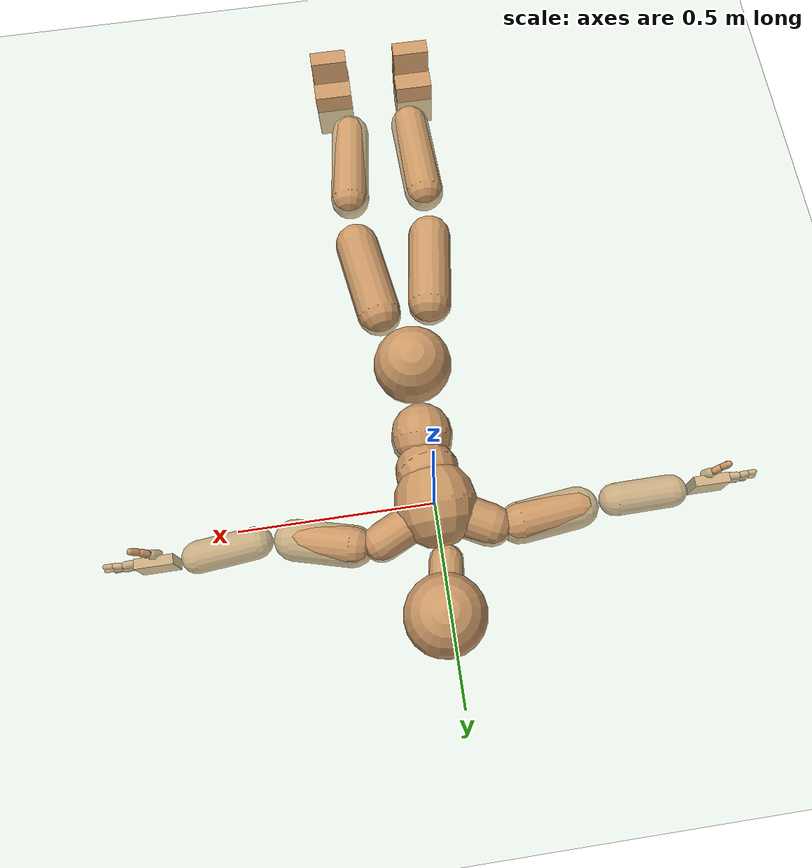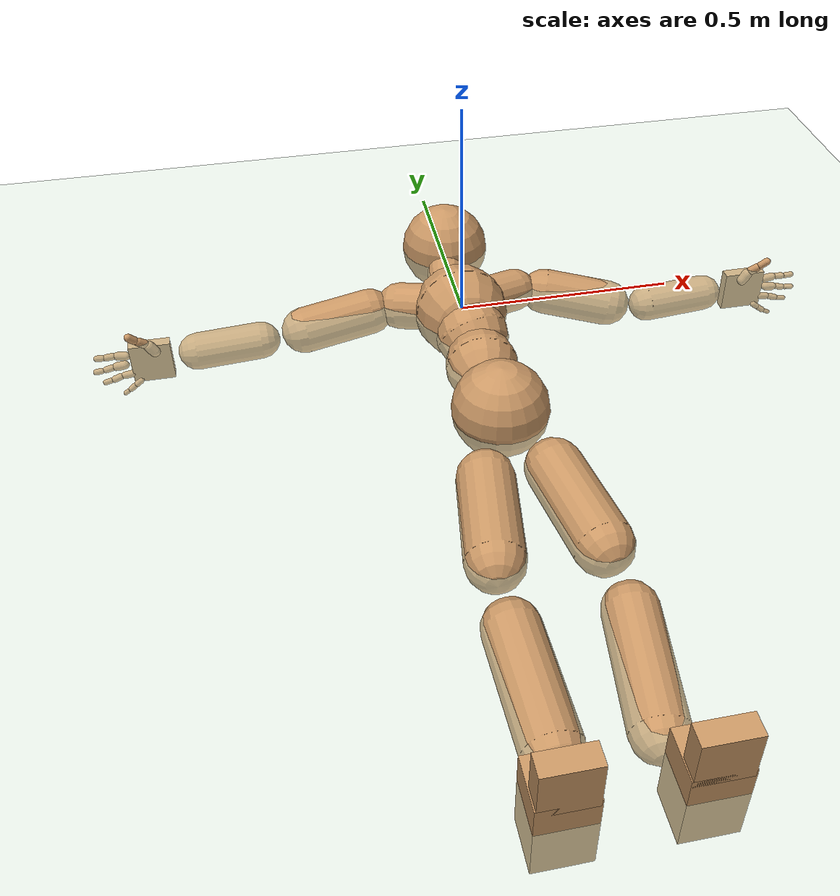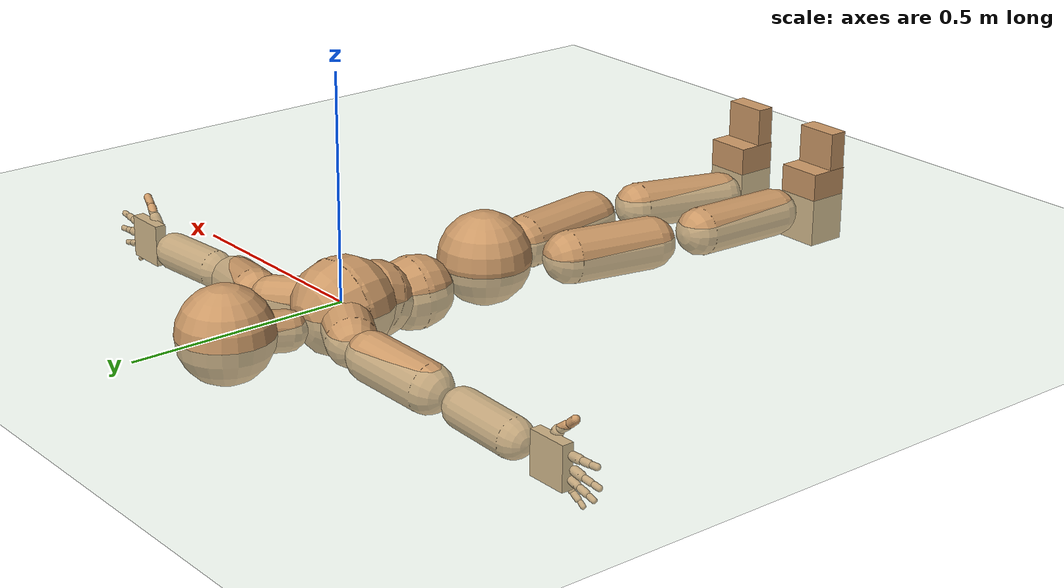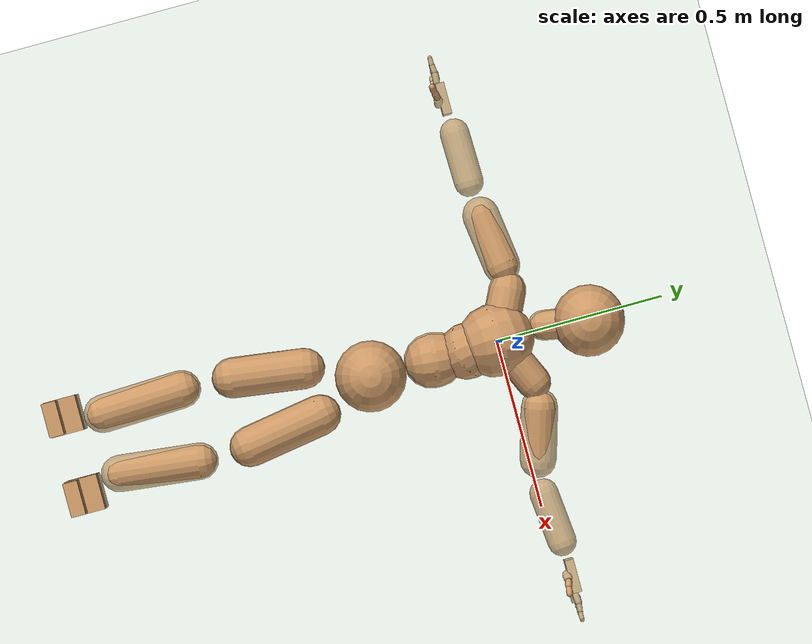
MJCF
<mujoco model="humanoid">
  <compiler coordinate="local"/>
  <default>
    <joint damping="0.0" armature="0.01" stiffness="0.0" limited="true"/>
    <geom conaffinity="1" condim="3" contype="7" margin="0.001" rgba="0.8 0.6 .4 1"/>
  </default>
  <asset>
    <texture type="skybox" builtin="gradient" rgb1=".4 .5 .6" rgb2="0 0 0" width="100" height="100"/>
    <texture builtin="flat" height="1278" mark="cross" markrgb="1 1 1" name="texgeom" random="0.01" rgb1="0.8 0.6 0.4" rgb2="0.8 0.6 0.4" type="cube" width="127"/>
    <texture builtin="checker" height="100" name="texplane" rgb1="0 0 0" rgb2="0.8 0.8 0.8" type="2d" width="100"/>
    <material name="MatPlane" reflectance="0.5" shininess="1" specular="1" texrepeat="60 60" texture="texplane"/>
    <material name="geom" texture="texgeom" texuniform="true"/>
  </asset>
  <worldbody>
    <light cutoff="100" diffuse="1 1 1" dir="-0 0 -1.3" directional="true" exponent="1" pos="0 0 1.3" specular=".1 .1 .1"/>
    <geom conaffinity="1" condim="3" name="floor" pos="0 0 0" rgba="0.8 0.9 0.8 1" size="100 100 .2" type="plane" material="MatPlane"/>
    <body name="Pelvis" pos="0.003 -0.3815 0.0077">
      <freejoint name="Pelvis"/>
      <geom type="sphere" contype="1" conaffinity="1" density="4629.6296296296305" size="0.1050" pos="0.0000 0.0000 0.0000" name="Pelvis"/>
      <body name="L_Hip" pos="0.0584 -0.0978 -0.0242">
        <joint name="L_Hip_x" type="hinge" pos="0 0 0" axis="1 0 0" user="250 2.5 1 500 10 2" armature="0.01" range="-90.0000 90.0000" damping="0" stiffness="0"/>
        <joint name="L_Hip_y" type="hinge" pos="0 0 0" axis="0 1 0" user="250 2.5 1 500 10 2" armature="0.01" range="-90.0000 90.0000" damping="0" stiffness="0"/>
        <joint name="L_Hip_z" type="hinge" pos="0 0 0" axis="0 0 1" user="250 2.5 1 500 10 2" armature="0.01" range="-90.0000 90.0000" damping="0" stiffness="0"/>
        <geom type="capsule" contype="1" conaffinity="1" density="2040.816327" fromto="0.0118 -0.0739 -0.0007 0.0472 -0.2957 -0.0026" size="0.061" name="L_Hip"/>
        <body name="L_Knee" pos="0.059 -0.3696 -0.0033">
          <joint name="L_Knee_x" type="hinge" pos="0 0 0" axis="1 0 0" user="250 2.5 1 500 10 2" armature="0.01" range="-180.0000 180.0000" damping="0" stiffness="0"/>
          <joint name="L_Knee_y" type="hinge" pos="0 0 0" axis="0 1 0" user="250 2.5 1 500 10 2" armature="0.01" range="-5.6250 5.6250" damping="0" stiffness="0"/>
          <joint name="L_Knee_z" type="hinge" pos="0 0 0" axis="0 0 1" user="250 2.5 1 500 10 2" armature="0.01" range="-5.6250 5.6250" damping="0" stiffness="0"/>
          <geom type="capsule" contype="1" conaffinity="1" density="1234.567901" fromto="-0.0089 -0.0794 -0.0061 -0.0355 -0.3175 -0.0242" size="0.0543" name="L_Knee"/>
          <body name="L_Ankle" pos="-0.0444 -0.3969 -0.0303">
            <joint name="L_Ankle_x" type="hinge" pos="0 0 0" axis="1 0 0" user="150 2.5 1 500 10 2" armature="0.01" range="-90.0000 90.0000" damping="0" stiffness="0"/>
            <joint name="L_Ankle_y" type="hinge" pos="0 0 0" axis="0 1 0" user="150 2.5 1 500 10 2" armature="0.01" range="-90.0000 90.0000" damping="0" stiffness="0"/>
            <joint name="L_Ankle_z" type="hinge" pos="0 0 0" axis="0 0 1" user="150 2.5 1 500 10 2" armature="0.01" range="-90.0000 90.0000" damping="0" stiffness="0"/>
            <geom type="box" density="451.823844" pos="0.0432 -0.0285 0.0237" size="0.0524 0.0477 0.0881" quat="1.0000 0.0000 0.0000 0.0000" name="L_Ankle"/>
            <body name="L_Toe" pos="0.0501 -0.058 0.1215">
              <joint name="L_Toe_x" type="hinge" pos="0 0 0" axis="1 0 0" user="150 1 1 500 1 1" armature="0.01" range="-90.0000 90.0000" damping="0" stiffness="0"/>
              <joint name="L_Toe_y" type="hinge" pos="0 0 0" axis="0 1 0" user="150 1 1 500 1 1" armature="0.01" range="-45.0000 45.0000" damping="0" stiffness="0"/>
              <joint name="L_Toe_z" type="hinge" pos="0 0 0" axis="0 0 1" user="150 1 1 500 1 1" armature="0.01" range="-45.0000 45.0000" damping="0" stiffness="0"/>
              <geom type="box" density="422.586667" pos="-0.0070 0.0033 0.0266" size="0.0501 0.0215 0.0517" quat="1.0000 0.0000 0.0000 0.0000" name="L_Toe"/>
            </body>
          </body>
        </body>
      </body>
      <body name="R_Hip" pos="-0.0632 -0.1105 -0.0181">
        <joint name="R_Hip_x" type="hinge" pos="0 0 0" axis="1 0 0" user="250 2.5 1 500 10 2" armature="0.01" range="-90.0000 90.0000" damping="0" stiffness="0"/>
        <joint name="R_Hip_y" type="hinge" pos="0 0 0" axis="0 1 0" user="250 2.5 1 500 10 2" armature="0.01" range="-90.0000 90.0000" damping="0" stiffness="0"/>
        <joint name="R_Hip_z" type="hinge" pos="0 0 0" axis="0 0 1" user="250 2.5 1 500 10 2" armature="0.01" range="-90.0000 90.0000" damping="0" stiffness="0"/>
        <geom type="capsule" contype="1" conaffinity="1" density="2040.816327" fromto="-0.0097 -0.0703 -0.0024 -0.0387 -0.2814 -0.0095" size="0.0604" name="R_Hip"/>
        <body name="R_Knee" pos="-0.0484 -0.3517 -0.0119">
          <joint name="R_Knee_x" type="hinge" pos="0 0 0" axis="1 0 0" user="250 2.5 1 500 10 2" armature="0.01" range="-180.0000 180.0000" damping="0" stiffness="0"/>
          <joint name="R_Knee_y" type="hinge" pos="0 0 0" axis="0 1 0" user="250 2.5 1 500 10 2" armature="0.01" range="-5.6250 5.6250" damping="0" stiffness="0"/>
          <joint name="R_Knee_z" type="hinge" pos="0 0 0" axis="0 0 1" user="250 2.5 1 500 10 2" armature="0.01" range="-5.6250 5.6250" damping="0" stiffness="0"/>
          <geom type="capsule" contype="1" conaffinity="1" density="1234.567901" fromto="0.0030 -0.0809 -0.0037 0.0119 -0.3237 -0.0147" size="0.0559" name="R_Knee"/>
          <body name="R_Ankle" pos="0.0149 -0.4046 -0.0183">
            <joint name="R_Ankle_x" type="hinge" pos="0 0 0" axis="1 0 0" user="150 1 1 500 10 2" armature="0.01" range="-90.0000 90.0000" damping="0" stiffness="0"/>
            <joint name="R_Ankle_y" type="hinge" pos="0 0 0" axis="0 1 0" user="150 1 1 500 10 2" armature="0.01" range="-90.0000 90.0000" damping="0" stiffness="0"/>
            <joint name="R_Ankle_z" type="hinge" pos="0 0 0" axis="0 0 1" user="150 1 1 500 10 2" armature="0.01" range="-90.0000 90.0000" damping="0" stiffness="0"/>
            <geom type="box" density="451.821283" pos="-0.0256 -0.0261 0.0143" size="0.0524 0.0477 0.0881" quat="1.0000 0.0000 0.0000 0.0000" name="R_Ankle"/>
            <body name="R_Toe" pos="-0.0409 -0.0582 0.1224">
              <joint name="R_Toe_x" type="hinge" pos="0 0 0" axis="1 0 0" user="150 1 1 500 1 1" armature="0.01" range="-90.0000 90.0000" damping="0" stiffness="0"/>
              <joint name="R_Toe_y" type="hinge" pos="0 0 0" axis="0 1 0" user="150 1 1 500 1 1" armature="0.01" range="-45.0000 45.0000" damping="0" stiffness="0"/>
              <joint name="R_Toe_z" type="hinge" pos="0 0 0" axis="0 0 1" user="150 1 1 500 1 1" armature="0.01" range="-45.0000 45.0000" damping="0" stiffness="0"/>
              <geom type="box" density="422.584961" pos="0.0154 0.0059 0.0162" size="0.0501 0.0215 0.0517" quat="1.0000 0.0000 0.0000 0.0000" name="R_Toe"/>
            </body>
          </body>
        </body>
      </body>
      <body name="Torso" pos="-0.0029 0.1174 -0.0317">
        <joint name="Torso_x" type="hinge" pos="0 0 0" axis="1 0 0" user="500 5 1 500 10 2" armature="0.01" range="-60.0000 60.0000" damping="0" stiffness="0"/>
        <joint name="Torso_y" type="hinge" pos="0 0 0" axis="0 1 0" user="500 5 1 500 10 2" armature="0.01" range="-60.0000 60.0000" damping="0" stiffness="0"/>
        <joint name="Torso_z" type="hinge" pos="0 0 0" axis="0 0 1" user="500 5 1 500 10 2" armature="0.01" range="-60.0000 60.0000" damping="0" stiffness="0"/>
        <geom type="capsule" contype="1" conaffinity="1" density="2040.816327" fromto="0.0050 0.0658 -0.0026 0.0061 0.0804 -0.0032" size="0.0813" name="Torso"/>
        <body name="Spine" pos="0.0111 0.1462 -0.0058">
          <joint name="Spine_x" type="hinge" pos="0 0 0" axis="1 0 0" user="500 5 1 500 10 2" armature="0.01" range="-60.0000 60.0000" damping="0" stiffness="0"/>
          <joint name="Spine_y" type="hinge" pos="0 0 0" axis="0 1 0" user="500 5 1 500 10 2" armature="0.01" range="-60.0000 60.0000" damping="0" stiffness="0"/>
          <joint name="Spine_z" type="hinge" pos="0 0 0" axis="0 0 1" user="500 5 1 500 10 2" armature="0.01" range="-60.0000 60.0000" damping="0" stiffness="0"/>
          <geom type="capsule" contype="1" conaffinity="1" density="2040.816327" fromto="-0.0054 0.0265 0.0132 -0.0066 0.0324 0.0161" size="0.0835" name="Spine"/>
          <body name="Chest" pos="-0.0119 0.059 0.0292">
            <joint name="Chest_x" type="hinge" pos="0 0 0" axis="1 0 0" user="500 5 1 500 10 2" armature="0.01" range="-60.0000 60.0000" damping="0" stiffness="0"/>
            <joint name="Chest_y" type="hinge" pos="0 0 0" axis="0 1 0" user="500 5 1 500 10 2" armature="0.01" range="-60.0000 60.0000" damping="0" stiffness="0"/>
            <joint name="Chest_z" type="hinge" pos="0 0 0" axis="0 0 1" user="500 5 1 500 10 2" armature="0.01" range="-60.0000 60.0000" damping="0" stiffness="0"/>
            <geom type="capsule" contype="1" conaffinity="1" density="2040.816327" fromto="-0.0025 0.0520 -0.0061 -0.0030 0.0635 -0.0075" size="0.1077" name="Chest"/>
            <body name="Neck" pos="-0.0134 0.1709 -0.0267">
              <joint name="Neck_x" type="hinge" pos="0 0 0" axis="1 0 0" user="150 1 1 250 50 4" armature="0.01" range="-180.0000 180.0000" damping="0" stiffness="0"/>
              <joint name="Neck_y" type="hinge" pos="0 0 0" axis="0 1 0" user="150 1 1 250 50 4" armature="0.01" range="-180.0000 180.0000" damping="0" stiffness="0"/>
              <joint name="Neck_z" type="hinge" pos="0 0 0" axis="0 0 1" user="150 1 1 250 50 4" armature="0.01" range="-180.0000 180.0000" damping="0" stiffness="0"/>
              <geom type="capsule" contype="1" conaffinity="1" density="1000" fromto="0.0054 0.0328 0.0048 0.0214 0.1313 0.0191" size="0.045" name="Neck"/>
              <body name="Head" pos="0.0268 0.1642 0.0239">
                <joint name="Head_x" type="hinge" pos="0 0 0" axis="1 0 0" user="150 1 1 250 50 4" armature="0.01" range="-90.0000 90.0000" damping="0" stiffness="0"/>
                <joint name="Head_y" type="hinge" pos="0 0 0" axis="0 1 0" user="150 1 1 250 50 4" armature="0.01" range="-90.0000 90.0000" damping="0" stiffness="0"/>
                <joint name="Head_z" type="hinge" pos="0 0 0" axis="0 0 1" user="150 1 1 250 50 4" armature="0.01" range="-90.0000 90.0000" damping="0" stiffness="0"/>
                <geom type="sphere" contype="1" conaffinity="1" density="1000" size="0.1055" pos="0.0000 0.0000 0.0000" name="Head"/>
              </body>
            </body>
            <body name="L_Thorax" pos="0.0472 0.0881 -0.0039">
              <joint name="L_Thorax_x" type="hinge" pos="0 0 0" axis="1 0 0" user="200 2 1 500 50 4" armature="0.01" range="-180.0000 180.0000" damping="0" stiffness="0"/>
              <joint name="L_Thorax_y" type="hinge" pos="0 0 0" axis="0 1 0" user="200 2 1 500 50 4" armature="0.01" range="-180.0000 180.0000" damping="0" stiffness="0"/>
              <joint name="L_Thorax_z" type="hinge" pos="0 0 0" axis="0 0 1" user="200 2 1 500 50 4" armature="0.01" range="-180.0000 180.0000" damping="0" stiffness="0"/>
              <geom type="capsule" contype="1" conaffinity="1" density="1000" fromto="0.0245 0.0113 -0.0035 0.0981 0.0450 -0.0140" size="0.0506" name="L_Thorax"/>
              <body name="L_Shoulder" pos="0.1227 0.0563 -0.0175">
                <joint name="L_Shoulder_x" type="hinge" pos="0 0 0" axis="1 0 0" user="200 2 1 500 50 4" armature="0.01" range="-180.0000 180.0000" damping="0" stiffness="0"/>
                <joint name="L_Shoulder_y" type="hinge" pos="0 0 0" axis="0 1 0" user="200 2 1 500 50 4" armature="0.01" range="-180.0000 180.0000" damping="0" stiffness="0"/>
                <joint name="L_Shoulder_z" type="hinge" pos="0 0 0" axis="0 0 1" user="200 2 1 500 50 4" armature="0.01" range="-180.0000 180.0000" damping="0" stiffness="0"/>
                <geom type="capsule" contype="1" conaffinity="1" density="1000" fromto="0.0495 -0.0143 -0.0089 0.1979 -0.0573 -0.0354" size="0.0542" name="L_Shoulder"/>
                <body name="L_Elbow" pos="0.2474 -0.0716 -0.0443">
                  <joint name="L_Elbow_x" type="hinge" pos="0 0 0" axis="1 0 0" user="150 1 1 150 10 2" armature="0.01" range="-720.0000 720.0000" damping="0" stiffness="0"/>
                  <joint name="L_Elbow_y" type="hinge" pos="0 0 0" axis="0 1 0" user="150 1 1 150 10 2" armature="0.01" range="-720.0000 720.0000" damping="0" stiffness="0"/>
                  <joint name="L_Elbow_z" type="hinge" pos="0 0 0" axis="0 0 1" user="150 1 1 150 10 2" armature="0.01" range="-720.0000 720.0000" damping="0" stiffness="0"/>
                  <geom type="capsule" contype="1" conaffinity="1" density="1000" fromto="0.0505 0.0048 0.0002 0.2018 0.0194 0.0007" size="0.0426" name="L_Elbow"/>
                  <body name="L_Wrist" pos="0.2523 0.0242 0.0009">
                    <joint name="L_Wrist_x" type="hinge" pos="0 0 0" axis="1 0 0" user="100 1 1 150 1 1" armature="0.01" range="-180.0000 180.0000" damping="0" stiffness="0"/>
                    <joint name="L_Wrist_y" type="hinge" pos="0 0 0" axis="0 1 0" user="100 1 1 150 1 1" armature="0.01" range="-180.0000 180.0000" damping="0" stiffness="0"/>
                    <joint name="L_Wrist_z" type="hinge" pos="0 0 0" axis="0 0 1" user="100 1 1 150 1 1" armature="0.01" range="-180.0000 180.0000" damping="0" stiffness="0"/>
                    <geom type="box" density="1217.909365" pos="0.0536 -0.0013 -0.0024" size="0.0494 0.0131 0.0485" quat="1.0000 0.0000 0.0000 0.0000" name="L_Wrist"/>
                    <body name="L_Index1" pos="0.104 -0.0083 0.0212">
                      <joint name="L_Index1_x" type="hinge" pos="0 0 0" axis="1 0 0" user="100 10 1 150" armature="0.01" range="-180.0000 180.0000" damping="0" stiffness="0"/>
                      <joint name="L_Index1_y" type="hinge" pos="0 0 0" axis="0 1 0" user="100 10 1 150" armature="0.01" range="-180.0000 180.0000" damping="0" stiffness="0"/>
                      <joint name="L_Index1_z" type="hinge" pos="0 0 0" axis="0 0 1" user="100 10 1 150" armature="0.01" range="-180.0000 180.0000" damping="0" stiffness="0"/>
                      <geom type="capsule" contype="1" conaffinity="1" density="1000" fromto="0.0065 0.0005 0.0006 0.0261 0.0019 0.0023" size="0.0097" name="L_Index1"/>
                      <body name="L_Index2" pos="0.0326 0.0024 0.0029">
                        <joint name="L_Index2_x" type="hinge" pos="0 0 0" axis="1 0 0" user="100 10 1 150" armature="0.01" range="-180.0000 180.0000" damping="0" stiffness="0"/>
                        <joint name="L_Index2_y" type="hinge" pos="0 0 0" axis="0 1 0" user="100 10 1 150" armature="0.01" range="-180.0000 180.0000" damping="0" stiffness="0"/>
                        <joint name="L_Index2_z" type="hinge" pos="0 0 0" axis="0 0 1" user="100 10 1 150" armature="0.01" range="-180.0000 180.0000" damping="0" stiffness="0"/>
                        <geom type="capsule" contype="1" conaffinity="1" density="1000" fromto="0.0046 -0.0005 -0.0001 0.0183 -0.0020 -0.0002" size="0.008" name="L_Index2"/>
                        <body name="L_Index3" pos="0.0229 -0.0025 -0.0003">
                          <joint name="L_Index3_x" type="hinge" pos="0 0 0" axis="1 0 0" user="100 10 1 150" armature="0.01" range="-180.0000 180.0000" damping="0" stiffness="0"/>
                          <joint name="L_Index3_y" type="hinge" pos="0 0 0" axis="0 1 0" user="100 10 1 150" armature="0.01" range="-180.0000 180.0000" damping="0" stiffness="0"/>
                          <joint name="L_Index3_z" type="hinge" pos="0 0 0" axis="0 0 1" user="100 10 1 150" armature="0.01" range="-180.0000 180.0000" damping="0" stiffness="0"/>
                          <geom type="capsule" contype="1" conaffinity="1" density="1000" fromto="0.0050 -0.0001 0.0003 0.0199 -0.0004 0.0014" size="0.0067" name="L_Index3"/>
                        </body>
                      </body>
                    </body>
                    <body name="L_Middle1" pos="0.1118 -0.0058 -0.0034">
                      <joint name="L_Middle1_x" type="hinge" pos="0 0 0" axis="1 0 0" user="100 10 1 150" armature="0.01" range="-180.0000 180.0000" damping="0" stiffness="0"/>
                      <joint name="L_Middle1_y" type="hinge" pos="0 0 0" axis="0 1 0" user="100 10 1 150" armature="0.01" range="-180.0000 180.0000" damping="0" stiffness="0"/>
                      <joint name="L_Middle1_z" type="hinge" pos="0 0 0" axis="0 0 1" user="100 10 1 150" armature="0.01" range="-180.0000 180.0000" damping="0" stiffness="0"/>
                      <geom type="capsule" contype="1" conaffinity="1" density="1000" fromto="0.0063 0.0002 -0.0008 0.0250 0.0007 -0.0033" size="0.01" name="L_Middle1"/>
                      <body name="L_Middle2" pos="0.0313 0.0008 -0.0041">
                        <joint name="L_Middle2_x" type="hinge" pos="0 0 0" axis="1 0 0" user="100 10 1 150" armature="0.01" range="-180.0000 180.0000" damping="0" stiffness="0"/>
                        <joint name="L_Middle2_y" type="hinge" pos="0 0 0" axis="0 1 0" user="100 10 1 150" armature="0.01" range="-180.0000 180.0000" damping="0" stiffness="0"/>
                        <joint name="L_Middle2_z" type="hinge" pos="0 0 0" axis="0 0 1" user="100 10 1 150" armature="0.01" range="-180.0000 180.0000" damping="0" stiffness="0"/>
                        <geom type="capsule" contype="1" conaffinity="1" density="1000" fromto="0.0048 -0.0004 -0.0009 0.0191 -0.0017 -0.0034" size="0.0074" name="L_Middle2"/>
                        <body name="L_Middle3" pos="0.0239 -0.0022 -0.0043">
                          <joint name="L_Middle3_x" type="hinge" pos="0 0 0" axis="1 0 0" user="100 10 1 150" armature="0.01" range="-180.0000 180.0000" damping="0" stiffness="0"/>
                          <joint name="L_Middle3_y" type="hinge" pos="0 0 0" axis="0 1 0" user="100 10 1 150" armature="0.01" range="-180.0000 180.0000" damping="0" stiffness="0"/>
                          <joint name="L_Middle3_z" type="hinge" pos="0 0 0" axis="0 0 1" user="100 10 1 150" armature="0.01" range="-180.0000 180.0000" damping="0" stiffness="0"/>
                          <geom type="capsule" contype="1" conaffinity="1" density="1000" fromto="0.0052 -0.0000 -0.0005 0.0207 -0.0001 -0.0018" size="0.0064" name="L_Middle3"/>
                        </body>
                      </body>
                    </body>
                    <body name="L_Pinky1" pos="0.0858 -0.0145 -0.0455">
                      <joint name="L_Pinky1_x" type="hinge" pos="0 0 0" axis="1 0 0" user="100 10 1 150" armature="0.01" range="-180.0000 180.0000" damping="0" stiffness="0"/>
                      <joint name="L_Pinky1_y" type="hinge" pos="0 0 0" axis="0 1 0" user="100 10 1 150" armature="0.01" range="-180.0000 180.0000" damping="0" stiffness="0"/>
                      <joint name="L_Pinky1_z" type="hinge" pos="0 0 0" axis="0 0 1" user="100 10 1 150" armature="0.01" range="-180.0000 180.0000" damping="0" stiffness="0"/>
                      <geom type="capsule" contype="1" conaffinity="1" density="1000" fromto="0.0033 -0.0003 -0.0025 0.0131 -0.0011 -0.0099" size="0.0071" name="L_Pinky1"/>
                      <body name="L_Pinky2" pos="0.0164 -0.0013 -0.0124">
                        <joint name="L_Pinky2_x" type="hinge" pos="0 0 0" axis="1 0 0" user="100 10 1 150" armature="0.01" range="-180.0000 180.0000" damping="0" stiffness="0"/>
                        <joint name="L_Pinky2_y" type="hinge" pos="0 0 0" axis="0 1 0" user="100 10 1 150" armature="0.01" range="-180.0000 180.0000" damping="0" stiffness="0"/>
                        <joint name="L_Pinky2_z" type="hinge" pos="0 0 0" axis="0 0 1" user="100 10 1 150" armature="0.01" range="-180.0000 180.0000" damping="0" stiffness="0"/>
                        <geom type="capsule" contype="1" conaffinity="1" density="1000" fromto="0.0032 -0.0004 -0.0023 0.0129 -0.0015 -0.0091" size="0.0068" name="L_Pinky2"/>
                        <body name="L_Pinky3" pos="0.0162 -0.0019 -0.0113">
                          <joint name="L_Pinky3_x" type="hinge" pos="0 0 0" axis="1 0 0" user="100 10 1 150" armature="0.01" range="-180.0000 180.0000" damping="0" stiffness="0"/>
                          <joint name="L_Pinky3_y" type="hinge" pos="0 0 0" axis="0 1 0" user="100 10 1 150" armature="0.01" range="-180.0000 180.0000" damping="0" stiffness="0"/>
                          <joint name="L_Pinky3_z" type="hinge" pos="0 0 0" axis="0 0 1" user="100 10 1 150" armature="0.01" range="-180.0000 180.0000" damping="0" stiffness="0"/>
                          <geom type="capsule" contype="1" conaffinity="1" density="1000" fromto="0.0036 0.0000 -0.0019 0.0145 0.0001 -0.0075" size="0.0051" name="L_Pinky3"/>
                        </body>
                      </body>
                    </body>
                    <body name="L_Ring1" pos="0.0996 -0.0089 -0.0282">
                      <joint name="L_Ring1_x" type="hinge" pos="0 0 0" axis="1 0 0" user="100 10 1 150" armature="0.01" range="-180.0000 180.0000" damping="0" stiffness="0"/>
                      <joint name="L_Ring1_y" type="hinge" pos="0 0 0" axis="0 1 0" user="100 10 1 150" armature="0.01" range="-180.0000 180.0000" damping="0" stiffness="0"/>
                      <joint name="L_Ring1_z" type="hinge" pos="0 0 0" axis="0 0 1" user="100 10 1 150" armature="0.01" range="-180.0000 180.0000" damping="0" stiffness="0"/>
                      <geom type="capsule" contype="1" conaffinity="1" density="1000" fromto="0.0058 0.0003 -0.0011 0.0232 0.0013 -0.0043" size="0.0084" name="L_Ring1"/>
                      <body name="L_Ring2" pos="0.029 0.0016 -0.0054">
                        <joint name="L_Ring2_x" type="hinge" pos="0 0 0" axis="1 0 0" user="100 10 1 150" armature="0.01" range="-180.0000 180.0000" damping="0" stiffness="0"/>
                        <joint name="L_Ring2_y" type="hinge" pos="0 0 0" axis="0 1 0" user="100 10 1 150" armature="0.01" range="-180.0000 180.0000" damping="0" stiffness="0"/>
                        <joint name="L_Ring2_z" type="hinge" pos="0 0 0" axis="0 0 1" user="100 10 1 150" armature="0.01" range="-180.0000 180.0000" damping="0" stiffness="0"/>
                        <geom type="capsule" contype="1" conaffinity="1" density="1000" fromto="0.0047 -0.0003 -0.0015 0.0187 -0.0013 -0.0058" size="0.0078" name="L_Ring2"/>
                        <body name="L_Ring3" pos="0.0234 -0.0016 -0.0073">
                          <joint name="L_Ring3_x" type="hinge" pos="0 0 0" axis="1 0 0" user="100 10 1 150" armature="0.01" range="-180.0000 180.0000" damping="0" stiffness="0"/>
                          <joint name="L_Ring3_y" type="hinge" pos="0 0 0" axis="0 1 0" user="100 10 1 150" armature="0.01" range="-180.0000 180.0000" damping="0" stiffness="0"/>
                          <joint name="L_Ring3_z" type="hinge" pos="0 0 0" axis="0 0 1" user="100 10 1 150" armature="0.01" range="-180.0000 180.0000" damping="0" stiffness="0"/>
                          <geom type="capsule" contype="1" conaffinity="1" density="1000" fromto="0.0051 0.0001 -0.0011 0.0203 0.0003 -0.0042" size="0.006" name="L_Ring3"/>
                        </body>
                      </body>
                    </body>
                    <body name="L_Thumb1" pos="0.041 -0.0191 0.028">
                      <joint name="L_Thumb1_x" type="hinge" pos="0 0 0" axis="1 0 0" user="100 10 1 150" armature="0.01" range="-180.0000 180.0000" damping="0" stiffness="0"/>
                      <joint name="L_Thumb1_y" type="hinge" pos="0 0 0" axis="0 1 0" user="100 10 1 150" armature="0.01" range="-180.0000 180.0000" damping="0" stiffness="0"/>
                      <joint name="L_Thumb1_z" type="hinge" pos="0 0 0" axis="0 0 1" user="100 10 1 150" armature="0.01" range="-180.0000 180.0000" damping="0" stiffness="0"/>
                      <geom type="capsule" contype="1" conaffinity="1" density="1000" fromto="0.0035 0.0003 0.0052 0.0139 0.0011 0.0210" size="0.0127" name="L_Thumb1"/>
                      <body name="L_Thumb2" pos="0.0174 0.0013 0.0262">
                        <joint name="L_Thumb2_x" type="hinge" pos="0 0 0" axis="1 0 0" user="100 10 1 150" armature="0.01" range="-180.0000 180.0000" damping="0" stiffness="0"/>
                        <joint name="L_Thumb2_y" type="hinge" pos="0 0 0" axis="0 1 0" user="100 10 1 150" armature="0.01" range="-180.0000 180.0000" damping="0" stiffness="0"/>
                        <joint name="L_Thumb2_z" type="hinge" pos="0 0 0" axis="0 0 1" user="100 10 1 150" armature="0.01" range="-180.0000 180.0000" damping="0" stiffness="0"/>
                        <geom type="capsule" contype="1" conaffinity="1" density="1000" fromto="0.0042 -0.0011 0.0032 0.0168 -0.0043 0.0127" size="0.0101" name="L_Thumb2"/>
                        <body name="L_Thumb3" pos="0.021 -0.0054 0.0159">
                          <joint name="L_Thumb3_x" type="hinge" pos="0 0 0" axis="1 0 0" user="100 10 1 150" armature="0.01" range="-180.0000 180.0000" damping="0" stiffness="0"/>
                          <joint name="L_Thumb3_y" type="hinge" pos="0 0 0" axis="0 1 0" user="100 10 1 150" armature="0.01" range="-180.0000 180.0000" damping="0" stiffness="0"/>
                          <joint name="L_Thumb3_z" type="hinge" pos="0 0 0" axis="0 0 1" user="100 10 1 150" armature="0.01" range="-180.0000 180.0000" damping="0" stiffness="0"/>
                          <geom type="capsule" contype="1" conaffinity="1" density="1000" fromto="0.0046 -0.0007 0.0036 0.0184 -0.0027 0.0143" size="0.0091" name="L_Thumb3"/>
                        </body>
                      </body>
                    </body>
                  </body>
                </body>
              </body>
            </body>
            <body name="R_Thorax" pos="-0.0501 0.0874 -0.0102">
              <joint name="R_Thorax_x" type="hinge" pos="0 0 0" axis="1 0 0" user="200 2 1 150 10 2" armature="0.01" range="-180.0000 180.0000" damping="0" stiffness="0"/>
              <joint name="R_Thorax_y" type="hinge" pos="0 0 0" axis="0 1 0" user="200 2 1 150 10 2" armature="0.01" range="-180.0000 180.0000" damping="0" stiffness="0"/>
              <joint name="R_Thorax_z" type="hinge" pos="0 0 0" axis="0 0 1" user="200 2 1 150 10 2" armature="0.01" range="-180.0000 180.0000" damping="0" stiffness="0"/>
              <geom type="capsule" contype="1" conaffinity="1" density="1000" fromto="-0.0212 0.0104 -0.0030 -0.0847 0.0415 -0.0119" size="0.0556" name="R_Thorax"/>
              <body name="R_Shoulder" pos="-0.1059 0.0519 -0.0148">
                <joint name="R_Shoulder_x" type="hinge" pos="0 0 0" axis="1 0 0" user="200 2 1 250 10 2" armature="0.01" range="-180.0000 180.0000" damping="0" stiffness="0"/>
                <joint name="R_Shoulder_y" type="hinge" pos="0 0 0" axis="0 1 0" user="200 2 1 250 10 2" armature="0.01" range="-180.0000 180.0000" damping="0" stiffness="0"/>
                <joint name="R_Shoulder_z" type="hinge" pos="0 0 0" axis="0 0 1" user="200 2 1 250 10 2" armature="0.01" range="-180.0000 180.0000" damping="0" stiffness="0"/>
                <geom type="capsule" contype="1" conaffinity="1" density="1000" fromto="-0.0529 -0.0068 -0.0055 -0.2115 -0.0273 -0.0221" size="0.0541" name="R_Shoulder"/>
                <body name="R_Elbow" pos="-0.2643 -0.0341 -0.0276">
                  <joint name="R_Elbow_x" type="hinge" pos="0 0 0" axis="1 0 0" user="150 1 1 150 10 2" armature="0.01" range="-720.0000 720.0000" damping="0" stiffness="0"/>
                  <joint name="R_Elbow_y" type="hinge" pos="0 0 0" axis="0 1 0" user="150 1 1 150 10 2" armature="0.01" range="-720.0000 720.0000" damping="0" stiffness="0"/>
                  <joint name="R_Elbow_z" type="hinge" pos="0 0 0" axis="0 0 1" user="150 1 1 150 10 2" armature="0.01" range="-720.0000 720.0000" damping="0" stiffness="0"/>
                  <geom type="capsule" contype="1" conaffinity="1" density="1000" fromto="-0.0499 -0.0010 -0.0024 -0.1997 -0.0039 -0.0097" size="0.0429" name="R_Elbow"/>
                  <body name="R_Wrist" pos="-0.2496 -0.0049 -0.0121">
                    <joint name="R_Wrist_x" type="hinge" pos="0 0 0" axis="1 0 0" user="100 1 1 150 1 1" armature="0.01" range="-180.0000 180.0000" damping="0" stiffness="0"/>
                    <joint name="R_Wrist_y" type="hinge" pos="0 0 0" axis="0 1 0" user="100 1 1 150 1 1" armature="0.01" range="-180.0000 180.0000" damping="0" stiffness="0"/>
                    <joint name="R_Wrist_z" type="hinge" pos="0 0 0" axis="0 0 1" user="100 1 1 150 1 1" armature="0.01" range="-180.0000 180.0000" damping="0" stiffness="0"/>
                    <geom type="box" density="1244.566861" pos="-0.0548 -0.0045 -0.0024" size="0.0467 0.0131 0.0485" quat="1.0000 0.0000 0.0000 0.0000" name="R_Wrist"/>
                    <body name="R_Index1" pos="-0.1021 -0.0115 0.0212">
                      <joint name="R_Index1_x" type="hinge" pos="0 0 0" axis="1 0 0" user="100 10 1 150" armature="0.01" range="-180.0000 180.0000" damping="0" stiffness="0"/>
                      <joint name="R_Index1_y" type="hinge" pos="0 0 0" axis="0 1 0" user="100 10 1 150" armature="0.01" range="-180.0000 180.0000" damping="0" stiffness="0"/>
                      <joint name="R_Index1_z" type="hinge" pos="0 0 0" axis="0 0 1" user="100 10 1 150" armature="0.01" range="-180.0000 180.0000" damping="0" stiffness="0"/>
                      <geom type="capsule" contype="1" conaffinity="1" density="1000" fromto="-0.0065 0.0005 0.0006 -0.0261 0.0019 0.0023" size="0.0097" name="R_Index1"/>
                      <body name="R_Index2" pos="-0.0326 0.0024 0.0029">
                        <joint name="R_Index2_x" type="hinge" pos="0 0 0" axis="1 0 0" user="100 10 1 150" armature="0.01" range="-180.0000 180.0000" damping="0" stiffness="0"/>
                        <joint name="R_Index2_y" type="hinge" pos="0 0 0" axis="0 1 0" user="100 10 1 150" armature="0.01" range="-180.0000 180.0000" damping="0" stiffness="0"/>
                        <joint name="R_Index2_z" type="hinge" pos="0 0 0" axis="0 0 1" user="100 10 1 150" armature="0.01" range="-180.0000 180.0000" damping="0" stiffness="0"/>
                        <geom type="capsule" contype="1" conaffinity="1" density="1000" fromto="-0.0046 -0.0005 -0.0001 -0.0183 -0.0020 -0.0002" size="0.008" name="R_Index2"/>
                        <body name="R_Index3" pos="-0.0229 -0.0025 -0.0003">
                          <joint name="R_Index3_x" type="hinge" pos="0 0 0" axis="1 0 0" user="100 10 1 150" armature="0.01" range="-180.0000 180.0000" damping="0" stiffness="0"/>
                          <joint name="R_Index3_y" type="hinge" pos="0 0 0" axis="0 1 0" user="100 10 1 150" armature="0.01" range="-180.0000 180.0000" damping="0" stiffness="0"/>
                          <joint name="R_Index3_z" type="hinge" pos="0 0 0" axis="0 0 1" user="100 10 1 150" armature="0.01" range="-180.0000 180.0000" damping="0" stiffness="0"/>
                          <geom type="capsule" contype="1" conaffinity="1" density="1000" fromto="-0.0042 -0.0001 0.0003 -0.0167 -0.0004 0.0014" size="0.007" name="R_Index3"/>
                        </body>
                      </body>
                    </body>
                    <body name="R_Middle1" pos="-0.1099 -0.0091 -0.0034">
                      <joint name="R_Middle1_x" type="hinge" pos="0 0 0" axis="1 0 0" user="100 10 1 150" armature="0.01" range="-180.0000 180.0000" damping="0" stiffness="0"/>
                      <joint name="R_Middle1_y" type="hinge" pos="0 0 0" axis="0 1 0" user="100 10 1 150" armature="0.01" range="-180.0000 180.0000" damping="0" stiffness="0"/>
                      <joint name="R_Middle1_z" type="hinge" pos="0 0 0" axis="0 0 1" user="100 10 1 150" armature="0.01" range="-180.0000 180.0000" damping="0" stiffness="0"/>
                      <geom type="capsule" contype="1" conaffinity="1" density="1000" fromto="-0.0063 0.0002 -0.0008 -0.0250 0.0007 -0.0033" size="0.01" name="R_Middle1"/>
                      <body name="R_Middle2" pos="-0.0313 0.0008 -0.0041">
                        <joint name="R_Middle2_x" type="hinge" pos="0 0 0" axis="1 0 0" user="100 10 1 150" armature="0.01" range="-180.0000 180.0000" damping="0" stiffness="0"/>
                        <joint name="R_Middle2_y" type="hinge" pos="0 0 0" axis="0 1 0" user="100 10 1 150" armature="0.01" range="-180.0000 180.0000" damping="0" stiffness="0"/>
                        <joint name="R_Middle2_z" type="hinge" pos="0 0 0" axis="0 0 1" user="100 10 1 150" armature="0.01" range="-180.0000 180.0000" damping="0" stiffness="0"/>
                        <geom type="capsule" contype="1" conaffinity="1" density="1000" fromto="-0.0048 -0.0004 -0.0009 -0.0191 -0.0017 -0.0034" size="0.0074" name="R_Middle2"/>
                        <body name="R_Middle3" pos="-0.0239 -0.0022 -0.0043">
                          <joint name="R_Middle3_x" type="hinge" pos="0 0 0" axis="1 0 0" user="100 10 1 150" armature="0.01" range="-180.0000 180.0000" damping="0" stiffness="0"/>
                          <joint name="R_Middle3_y" type="hinge" pos="0 0 0" axis="0 1 0" user="100 10 1 150" armature="0.01" range="-180.0000 180.0000" damping="0" stiffness="0"/>
                          <joint name="R_Middle3_z" type="hinge" pos="0 0 0" axis="0 0 1" user="100 10 1 150" armature="0.01" range="-180.0000 180.0000" damping="0" stiffness="0"/>
                          <geom type="capsule" contype="1" conaffinity="1" density="1000" fromto="-0.0044 -0.0000 -0.0005 -0.0175 -0.0001 -0.0018" size="0.0067" name="R_Middle3"/>
                        </body>
                      </body>
                    </body>
                    <body name="R_Pinky1" pos="-0.0839 -0.0177 -0.0455">
                      <joint name="R_Pinky1_x" type="hinge" pos="0 0 0" axis="1 0 0" user="100 10 1 150" armature="0.01" range="-180.0000 180.0000" damping="0" stiffness="0"/>
                      <joint name="R_Pinky1_y" type="hinge" pos="0 0 0" axis="0 1 0" user="100 10 1 150" armature="0.01" range="-180.0000 180.0000" damping="0" stiffness="0"/>
                      <joint name="R_Pinky1_z" type="hinge" pos="0 0 0" axis="0 0 1" user="100 10 1 150" armature="0.01" range="-180.0000 180.0000" damping="0" stiffness="0"/>
                      <geom type="capsule" contype="1" conaffinity="1" density="1000" fromto="-0.0033 -0.0003 -0.0025 -0.0131 -0.0011 -0.0099" size="0.0071" name="R_Pinky1"/>
                      <body name="R_Pinky2" pos="-0.0164 -0.0013 -0.0124">
                        <joint name="R_Pinky2_x" type="hinge" pos="0 0 0" axis="1 0 0" user="100 10 1 150" armature="0.01" range="-180.0000 180.0000" damping="0" stiffness="0"/>
                        <joint name="R_Pinky2_y" type="hinge" pos="0 0 0" axis="0 1 0" user="100 10 1 150" armature="0.01" range="-180.0000 180.0000" damping="0" stiffness="0"/>
                        <joint name="R_Pinky2_z" type="hinge" pos="0 0 0" axis="0 0 1" user="100 10 1 150" armature="0.01" range="-180.0000 180.0000" damping="0" stiffness="0"/>
                        <geom type="capsule" contype="1" conaffinity="1" density="1000" fromto="-0.0032 -0.0004 -0.0023 -0.0129 -0.0015 -0.0091" size="0.0068" name="R_Pinky2"/>
                        <body name="R_Pinky3" pos="-0.0162 -0.0019 -0.0113">
                          <joint name="R_Pinky3_x" type="hinge" pos="0 0 0" axis="1 0 0" user="100 10 1 150" armature="0.01" range="-180.0000 180.0000" damping="0" stiffness="0"/>
                          <joint name="R_Pinky3_y" type="hinge" pos="0 0 0" axis="0 1 0" user="100 10 1 150" armature="0.01" range="-180.0000 180.0000" damping="0" stiffness="0"/>
                          <joint name="R_Pinky3_z" type="hinge" pos="0 0 0" axis="0 0 1" user="100 10 1 150" armature="0.01" range="-180.0000 180.0000" damping="0" stiffness="0"/>
                          <geom type="capsule" contype="1" conaffinity="1" density="1000" fromto="-0.0028 0.0000 -0.0019 -0.0113 0.0001 -0.0075" size="0.0054" name="R_Pinky3"/>
                        </body>
                      </body>
                    </body>
                    <body name="R_Ring1" pos="-0.0977 -0.0121 -0.0282">
                      <joint name="R_Ring1_x" type="hinge" pos="0 0 0" axis="1 0 0" user="100 10 1 150" armature="0.01" range="-180.0000 180.0000" damping="0" stiffness="0"/>
                      <joint name="R_Ring1_y" type="hinge" pos="0 0 0" axis="0 1 0" user="100 10 1 150" armature="0.01" range="-180.0000 180.0000" damping="0" stiffness="0"/>
                      <joint name="R_Ring1_z" type="hinge" pos="0 0 0" axis="0 0 1" user="100 10 1 150" armature="0.01" range="-180.0000 180.0000" damping="0" stiffness="0"/>
                      <geom type="capsule" contype="1" conaffinity="1" density="1000" fromto="-0.0058 0.0003 -0.0011 -0.0232 0.0013 -0.0043" size="0.0084" name="R_Ring1"/>
                      <body name="R_Ring2" pos="-0.029 0.0016 -0.0054">
                        <joint name="R_Ring2_x" type="hinge" pos="0 0 0" axis="1 0 0" user="100 10 1 150" armature="0.01" range="-180.0000 180.0000" damping="0" stiffness="0"/>
                        <joint name="R_Ring2_y" type="hinge" pos="0 0 0" axis="0 1 0" user="100 10 1 150" armature="0.01" range="-180.0000 180.0000" damping="0" stiffness="0"/>
                        <joint name="R_Ring2_z" type="hinge" pos="0 0 0" axis="0 0 1" user="100 10 1 150" armature="0.01" range="-180.0000 180.0000" damping="0" stiffness="0"/>
                        <geom type="capsule" contype="1" conaffinity="1" density="1000" fromto="-0.0047 -0.0003 -0.0015 -0.0187 -0.0013 -0.0058" size="0.0078" name="R_Ring2"/>
                        <body name="R_Ring3" pos="-0.0234 -0.0016 -0.0073">
                          <joint name="R_Ring3_x" type="hinge" pos="0 0 0" axis="1 0 0" user="100 10 1 150" armature="0.01" range="-180.0000 180.0000" damping="0" stiffness="0"/>
                          <joint name="R_Ring3_y" type="hinge" pos="0 0 0" axis="0 1 0" user="100 10 1 150" armature="0.01" range="-180.0000 180.0000" damping="0" stiffness="0"/>
                          <joint name="R_Ring3_z" type="hinge" pos="0 0 0" axis="0 0 1" user="100 10 1 150" armature="0.01" range="-180.0000 180.0000" damping="0" stiffness="0"/>
                          <geom type="capsule" contype="1" conaffinity="1" density="1000" fromto="-0.0043 0.0001 -0.0011 -0.0171 0.0003 -0.0042" size="0.0063" name="R_Ring3"/>
                        </body>
                      </body>
                    </body>
                    <body name="R_Thumb1" pos="-0.0391 -0.0224 0.028">
                      <joint name="R_Thumb1_x" type="hinge" pos="0 0 0" axis="1 0 0" user="100 10 1 150" armature="0.01" range="-180.0000 180.0000" damping="0" stiffness="0"/>
                      <joint name="R_Thumb1_y" type="hinge" pos="0 0 0" axis="0 1 0" user="100 10 1 150" armature="0.01" range="-180.0000 180.0000" damping="0" stiffness="0"/>
                      <joint name="R_Thumb1_z" type="hinge" pos="0 0 0" axis="0 0 1" user="100 10 1 150" armature="0.01" range="-180.0000 180.0000" damping="0" stiffness="0"/>
                      <geom type="capsule" contype="1" conaffinity="1" density="1000" fromto="-0.0035 0.0003 0.0052 -0.0139 0.0011 0.0210" size="0.0127" name="R_Thumb1"/>
                      <body name="R_Thumb2" pos="-0.0174 0.0013 0.0262">
                        <joint name="R_Thumb2_x" type="hinge" pos="0 0 0" axis="1 0 0" user="100 10 1 150" armature="0.01" range="-180.0000 180.0000" damping="0" stiffness="0"/>
                        <joint name="R_Thumb2_y" type="hinge" pos="0 0 0" axis="0 1 0" user="100 10 1 150" armature="0.01" range="-180.0000 180.0000" damping="0" stiffness="0"/>
                        <joint name="R_Thumb2_z" type="hinge" pos="0 0 0" axis="0 0 1" user="100 10 1 150" armature="0.01" range="-180.0000 180.0000" damping="0" stiffness="0"/>
                        <geom type="capsule" contype="1" conaffinity="1" density="1000" fromto="-0.0042 -0.0011 0.0032 -0.0168 -0.0043 0.0127" size="0.0101" name="R_Thumb2"/>
                        <body name="R_Thumb3" pos="-0.021 -0.0053 0.0159">
                          <joint name="R_Thumb3_x" type="hinge" pos="0 0 0" axis="1 0 0" user="100 10 1 150" armature="0.01" range="-180.0000 180.0000" damping="0" stiffness="0"/>
                          <joint name="R_Thumb3_y" type="hinge" pos="0 0 0" axis="0 1 0" user="100 10 1 150" armature="0.01" range="-180.0000 180.0000" damping="0" stiffness="0"/>
                          <joint name="R_Thumb3_z" type="hinge" pos="0 0 0" axis="0 0 1" user="100 10 1 150" armature="0.01" range="-180.0000 180.0000" damping="0" stiffness="0"/>
                          <geom type="capsule" contype="1" conaffinity="1" density="1000" fromto="-0.0038 -0.0007 0.0036 -0.0152 -0.0027 0.0143" size="0.0094" name="R_Thumb3"/>
                        </body>
                      </body>
                    </body>
                  </body>
                </body>
              </body>
            </body>
          </body>
        </body>
      </body>
    </body>
  </worldbody>
  <actuator>
    <motor name="L_Hip_x" joint="L_Hip_x" gear="1"/>
    <motor name="L_Hip_y" joint="L_Hip_y" gear="1"/>
    <motor name="L_Hip_z" joint="L_Hip_z" gear="1"/>
    <motor name="L_Knee_x" joint="L_Knee_x" gear="1"/>
    <motor name="L_Knee_y" joint="L_Knee_y" gear="1"/>
    <motor name="L_Knee_z" joint="L_Knee_z" gear="1"/>
    <motor name="L_Ankle_x" joint="L_Ankle_x" gear="1"/>
    <motor name="L_Ankle_y" joint="L_Ankle_y" gear="1"/>
    <motor name="L_Ankle_z" joint="L_Ankle_z" gear="1"/>
    <motor name="L_Toe_x" joint="L_Toe_x" gear="1"/>
    <motor name="L_Toe_y" joint="L_Toe_y" gear="1"/>
    <motor name="L_Toe_z" joint="L_Toe_z" gear="1"/>
    <motor name="R_Hip_x" joint="R_Hip_x" gear="1"/>
    <motor name="R_Hip_y" joint="R_Hip_y" gear="1"/>
    <motor name="R_Hip_z" joint="R_Hip_z" gear="1"/>
    <motor name="R_Knee_x" joint="R_Knee_x" gear="1"/>
    <motor name="R_Knee_y" joint="R_Knee_y" gear="1"/>
    <motor name="R_Knee_z" joint="R_Knee_z" gear="1"/>
    <motor name="R_Ankle_x" joint="R_Ankle_x" gear="1"/>
    <motor name="R_Ankle_y" joint="R_Ankle_y" gear="1"/>
    <motor name="R_Ankle_z" joint="R_Ankle_z" gear="1"/>
    <motor name="R_Toe_x" joint="R_Toe_x" gear="1"/>
    <motor name="R_Toe_y" joint="R_Toe_y" gear="1"/>
    <motor name="R_Toe_z" joint="R_Toe_z" gear="1"/>
    <motor name="Torso_x" joint="Torso_x" gear="1"/>
    <motor name="Torso_y" joint="Torso_y" gear="1"/>
    <motor name="Torso_z" joint="Torso_z" gear="1"/>
    <motor name="Spine_x" joint="Spine_x" gear="1"/>
    <motor name="Spine_y" joint="Spine_y" gear="1"/>
    <motor name="Spine_z" joint="Spine_z" gear="1"/>
    <motor name="Chest_x" joint="Chest_x" gear="1"/>
    <motor name="Chest_y" joint="Chest_y" gear="1"/>
    <motor name="Chest_z" joint="Chest_z" gear="1"/>
    <motor name="Neck_x" joint="Neck_x" gear="1"/>
    <motor name="Neck_y" joint="Neck_y" gear="1"/>
    <motor name="Neck_z" joint="Neck_z" gear="1"/>
    <motor name="Head_x" joint="Head_x" gear="1"/>
    <motor name="Head_y" joint="Head_y" gear="1"/>
    <motor name="Head_z" joint="Head_z" gear="1"/>
    <motor name="L_Thorax_x" joint="L_Thorax_x" gear="1"/>
    <motor name="L_Thorax_y" joint="L_Thorax_y" gear="1"/>
    <motor name="L_Thorax_z" joint="L_Thorax_z" gear="1"/>
    <motor name="L_Shoulder_x" joint="L_Shoulder_x" gear="1"/>
    <motor name="L_Shoulder_y" joint="L_Shoulder_y" gear="1"/>
    <motor name="L_Shoulder_z" joint="L_Shoulder_z" gear="1"/>
    <motor name="L_Elbow_x" joint="L_Elbow_x" gear="1"/>
    <motor name="L_Elbow_y" joint="L_Elbow_y" gear="1"/>
    <motor name="L_Elbow_z" joint="L_Elbow_z" gear="1"/>
    <motor name="L_Wrist_x" joint="L_Wrist_x" gear="1"/>
    <motor name="L_Wrist_y" joint="L_Wrist_y" gear="1"/>
    <motor name="L_Wrist_z" joint="L_Wrist_z" gear="1"/>
    <motor name="L_Index1_x" joint="L_Index1_x" gear="1"/>
    <motor name="L_Index1_y" joint="L_Index1_y" gear="1"/>
    <motor name="L_Index1_z" joint="L_Index1_z" gear="1"/>
    <motor name="L_Index2_x" joint="L_Index2_x" gear="1"/>
    <motor name="L_Index2_y" joint="L_Index2_y" gear="1"/>
    <motor name="L_Index2_z" joint="L_Index2_z" gear="1"/>
    <motor name="L_Index3_x" joint="L_Index3_x" gear="1"/>
    <motor name="L_Index3_y" joint="L_Index3_y" gear="1"/>
    <motor name="L_Index3_z" joint="L_Index3_z" gear="1"/>
    <motor name="L_Middle1_x" joint="L_Middle1_x" gear="1"/>
    <motor name="L_Middle1_y" joint="L_Middle1_y" gear="1"/>
    <motor name="L_Middle1_z" joint="L_Middle1_z" gear="1"/>
    <motor name="L_Middle2_x" joint="L_Middle2_x" gear="1"/>
    <motor name="L_Middle2_y" joint="L_Middle2_y" gear="1"/>
    <motor name="L_Middle2_z" joint="L_Middle2_z" gear="1"/>
    <motor name="L_Middle3_x" joint="L_Middle3_x" gear="1"/>
    <motor name="L_Middle3_y" joint="L_Middle3_y" gear="1"/>
    <motor name="L_Middle3_z" joint="L_Middle3_z" gear="1"/>
    <motor name="L_Pinky1_x" joint="L_Pinky1_x" gear="1"/>
    <motor name="L_Pinky1_y" joint="L_Pinky1_y" gear="1"/>
    <motor name="L_Pinky1_z" joint="L_Pinky1_z" gear="1"/>
    <motor name="L_Pinky2_x" joint="L_Pinky2_x" gear="1"/>
    <motor name="L_Pinky2_y" joint="L_Pinky2_y" gear="1"/>
    <motor name="L_Pinky2_z" joint="L_Pinky2_z" gear="1"/>
    <motor name="L_Pinky3_x" joint="L_Pinky3_x" gear="1"/>
    <motor name="L_Pinky3_y" joint="L_Pinky3_y" gear="1"/>
    <motor name="L_Pinky3_z" joint="L_Pinky3_z" gear="1"/>
    <motor name="L_Ring1_x" joint="L_Ring1_x" gear="1"/>
    <motor name="L_Ring1_y" joint="L_Ring1_y" gear="1"/>
    <motor name="L_Ring1_z" joint="L_Ring1_z" gear="1"/>
    <motor name="L_Ring2_x" joint="L_Ring2_x" gear="1"/>
    <motor name="L_Ring2_y" joint="L_Ring2_y" gear="1"/>
    <motor name="L_Ring2_z" joint="L_Ring2_z" gear="1"/>
    <motor name="L_Ring3_x" joint="L_Ring3_x" gear="1"/>
    <motor name="L_Ring3_y" joint="L_Ring3_y" gear="1"/>
    <motor name="L_Ring3_z" joint="L_Ring3_z" gear="1"/>
    <motor name="L_Thumb1_x" joint="L_Thumb1_x" gear="1"/>
    <motor name="L_Thumb1_y" joint="L_Thumb1_y" gear="1"/>
    <motor name="L_Thumb1_z" joint="L_Thumb1_z" gear="1"/>
    <motor name="L_Thumb2_x" joint="L_Thumb2_x" gear="1"/>
    <motor name="L_Thumb2_y" joint="L_Thumb2_y" gear="1"/>
    <motor name="L_Thumb2_z" joint="L_Thumb2_z" gear="1"/>
    <motor name="L_Thumb3_x" joint="L_Thumb3_x" gear="1"/>
    <motor name="L_Thumb3_y" joint="L_Thumb3_y" gear="1"/>
    <motor name="L_Thumb3_z" joint="L_Thumb3_z" gear="1"/>
    <motor name="R_Thorax_x" joint="R_Thorax_x" gear="1"/>
    <motor name="R_Thorax_y" joint="R_Thorax_y" gear="1"/>
    <motor name="R_Thorax_z" joint="R_Thorax_z" gear="1"/>
    <motor name="R_Shoulder_x" joint="R_Shoulder_x" gear="1"/>
    <motor name="R_Shoulder_y" joint="R_Shoulder_y" gear="1"/>
    <motor name="R_Shoulder_z" joint="R_Shoulder_z" gear="1"/>
    <motor name="R_Elbow_x" joint="R_Elbow_x" gear="1"/>
    <motor name="R_Elbow_y" joint="R_Elbow_y" gear="1"/>
    <motor name="R_Elbow_z" joint="R_Elbow_z" gear="1"/>
    <motor name="R_Wrist_x" joint="R_Wrist_x" gear="1"/>
    <motor name="R_Wrist_y" joint="R_Wrist_y" gear="1"/>
    <motor name="R_Wrist_z" joint="R_Wrist_z" gear="1"/>
    <motor name="R_Index1_x" joint="R_Index1_x" gear="1"/>
    <motor name="R_Index1_y" joint="R_Index1_y" gear="1"/>
    <motor name="R_Index1_z" joint="R_Index1_z" gear="1"/>
    <motor name="R_Index2_x" joint="R_Index2_x" gear="1"/>
    <motor name="R_Index2_y" joint="R_Index2_y" gear="1"/>
    <motor name="R_Index2_z" joint="R_Index2_z" gear="1"/>
    <motor name="R_Index3_x" joint="R_Index3_x" gear="1"/>
    <motor name="R_Index3_y" joint="R_Index3_y" gear="1"/>
    <motor name="R_Index3_z" joint="R_Index3_z" gear="1"/>
    <motor name="R_Middle1_x" joint="R_Middle1_x" gear="1"/>
    <motor name="R_Middle1_y" joint="R_Middle1_y" gear="1"/>
    <motor name="R_Middle1_z" joint="R_Middle1_z" gear="1"/>
    <motor name="R_Middle2_x" joint="R_Middle2_x" gear="1"/>
    <motor name="R_Middle2_y" joint="R_Middle2_y" gear="1"/>
    <motor name="R_Middle2_z" joint="R_Middle2_z" gear="1"/>
    <motor name="R_Middle3_x" joint="R_Middle3_x" gear="1"/>
    <motor name="R_Middle3_y" joint="R_Middle3_y" gear="1"/>
    <motor name="R_Middle3_z" joint="R_Middle3_z" gear="1"/>
    <motor name="R_Pinky1_x" joint="R_Pinky1_x" gear="1"/>
    <motor name="R_Pinky1_y" joint="R_Pinky1_y" gear="1"/>
    <motor name="R_Pinky1_z" joint="R_Pinky1_z" gear="1"/>
    <motor name="R_Pinky2_x" joint="R_Pinky2_x" gear="1"/>
    <motor name="R_Pinky2_y" joint="R_Pinky2_y" gear="1"/>
    <motor name="R_Pinky2_z" joint="R_Pinky2_z" gear="1"/>
    <motor name="R_Pinky3_x" joint="R_Pinky3_x" gear="1"/>
    <motor name="R_Pinky3_y" joint="R_Pinky3_y" gear="1"/>
    <motor name="R_Pinky3_z" joint="R_Pinky3_z" gear="1"/>
    <motor name="R_Ring1_x" joint="R_Ring1_x" gear="1"/>
    <motor name="R_Ring1_y" joint="R_Ring1_y" gear="1"/>
    <motor name="R_Ring1_z" joint="R_Ring1_z" gear="1"/>
    <motor name="R_Ring2_x" joint="R_Ring2_x" gear="1"/>
    <motor name="R_Ring2_y" joint="R_Ring2_y" gear="1"/>
    <motor name="R_Ring2_z" joint="R_Ring2_z" gear="1"/>
    <motor name="R_Ring3_x" joint="R_Ring3_x" gear="1"/>
    <motor name="R_Ring3_y" joint="R_Ring3_y" gear="1"/>
    <motor name="R_Ring3_z" joint="R_Ring3_z" gear="1"/>
    <motor name="R_Thumb1_x" joint="R_Thumb1_x" gear="1"/>
    <motor name="R_Thumb1_y" joint="R_Thumb1_y" gear="1"/>
    <motor name="R_Thumb1_z" joint="R_Thumb1_z" gear="1"/>
    <motor name="R_Thumb2_x" joint="R_Thumb2_x" gear="1"/>
    <motor name="R_Thumb2_y" joint="R_Thumb2_y" gear="1"/>
    <motor name="R_Thumb2_z" joint="R_Thumb2_z" gear="1"/>
    <motor name="R_Thumb3_x" joint="R_Thumb3_x" gear="1"/>
    <motor name="R_Thumb3_y" joint="R_Thumb3_y" gear="1"/>
    <motor name="R_Thumb3_z" joint="R_Thumb3_z" gear="1"/>
  </actuator>
  <contact>
    <exclude body1="Torso" body2="Chest"/>
    <exclude body1="Head" body2="Chest"/>
    <exclude body1="R_Knee" body2="R_Toe"/>
    <exclude body1="R_Knee" body2="L_Ankle"/>
    <exclude body1="R_Knee" body2="L_Toe"/>
    <exclude body1="L_Knee" body2="L_Toe"/>
    <exclude body1="L_Knee" body2="R_Ankle"/>
    <exclude body1="L_Knee" body2="R_Toe"/>
    <exclude body1="L_Shoulder" body2="Chest"/>
    <exclude body1="R_Shoulder" body2="Chest"/>
  </contact>
  <sensor/>
  <size njmax="700" nconmax="700"/>
</mujoco>
